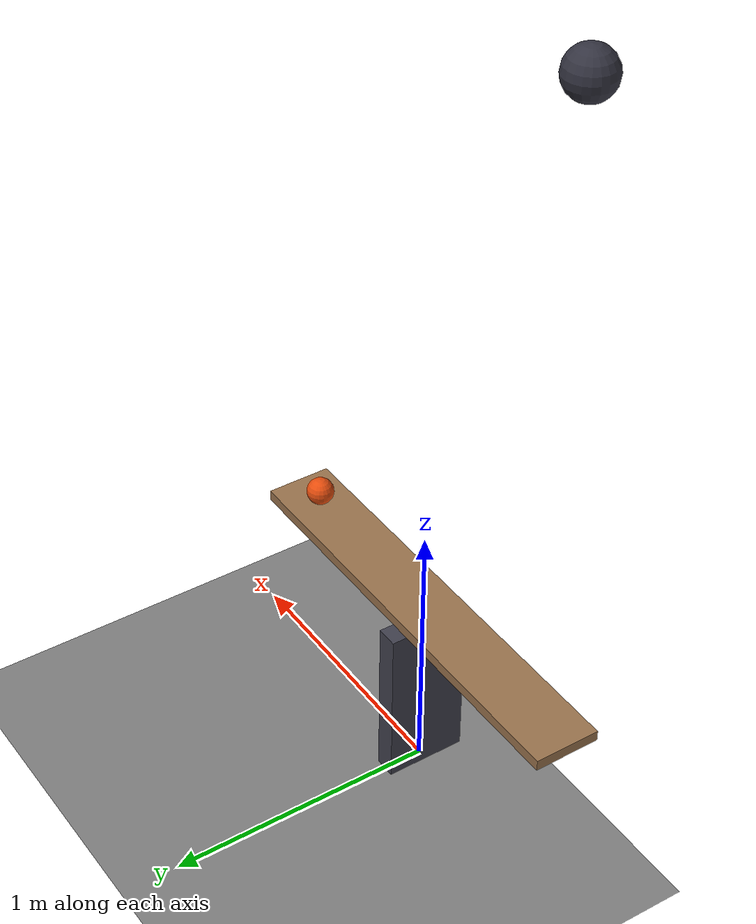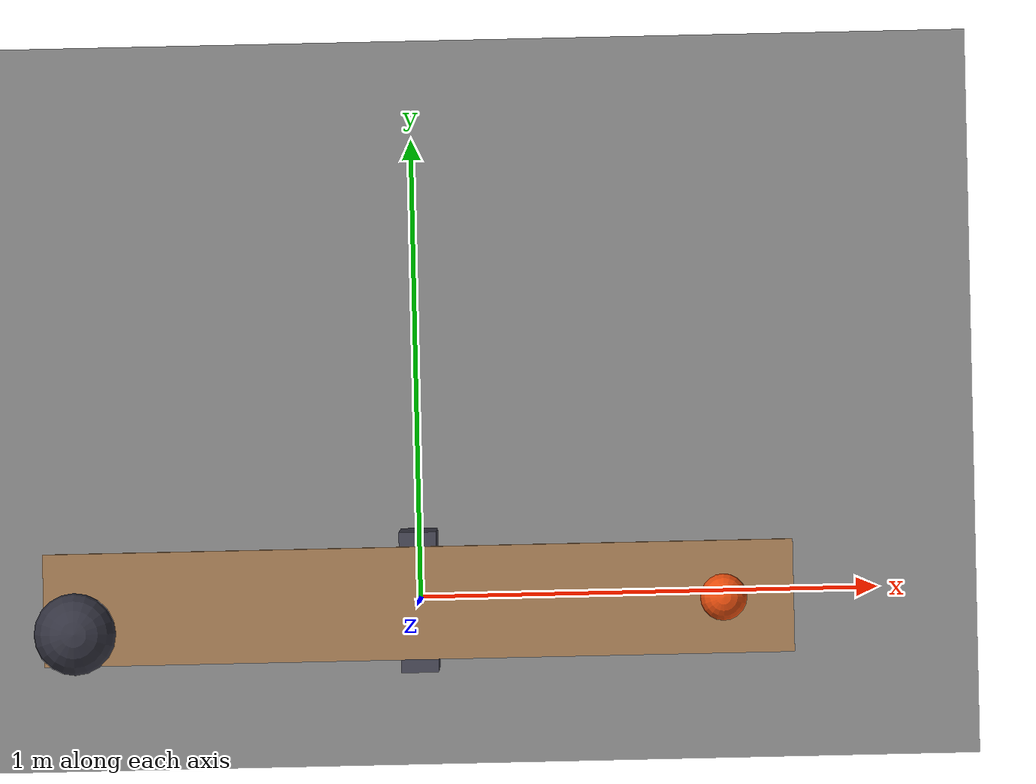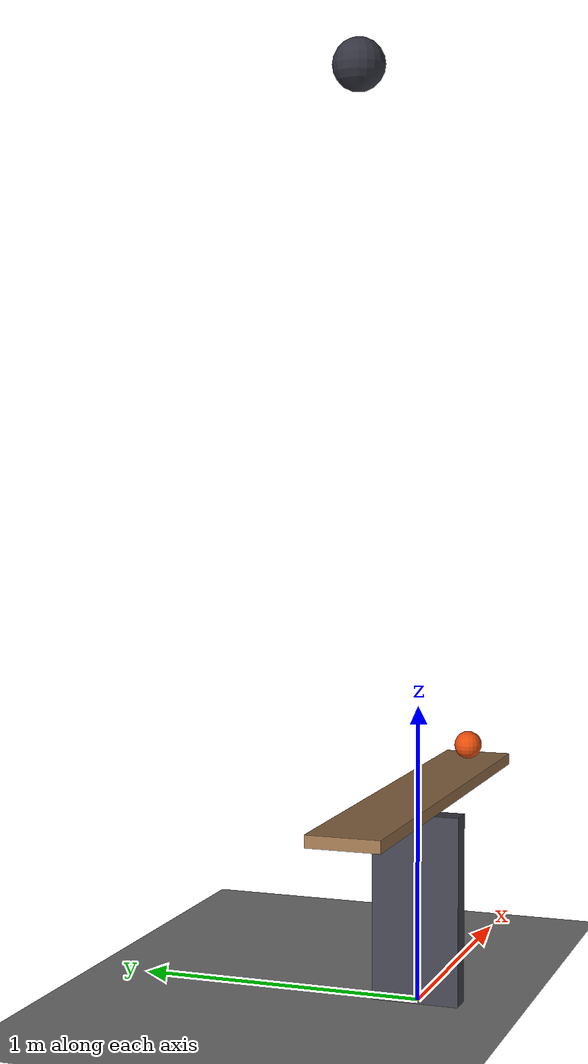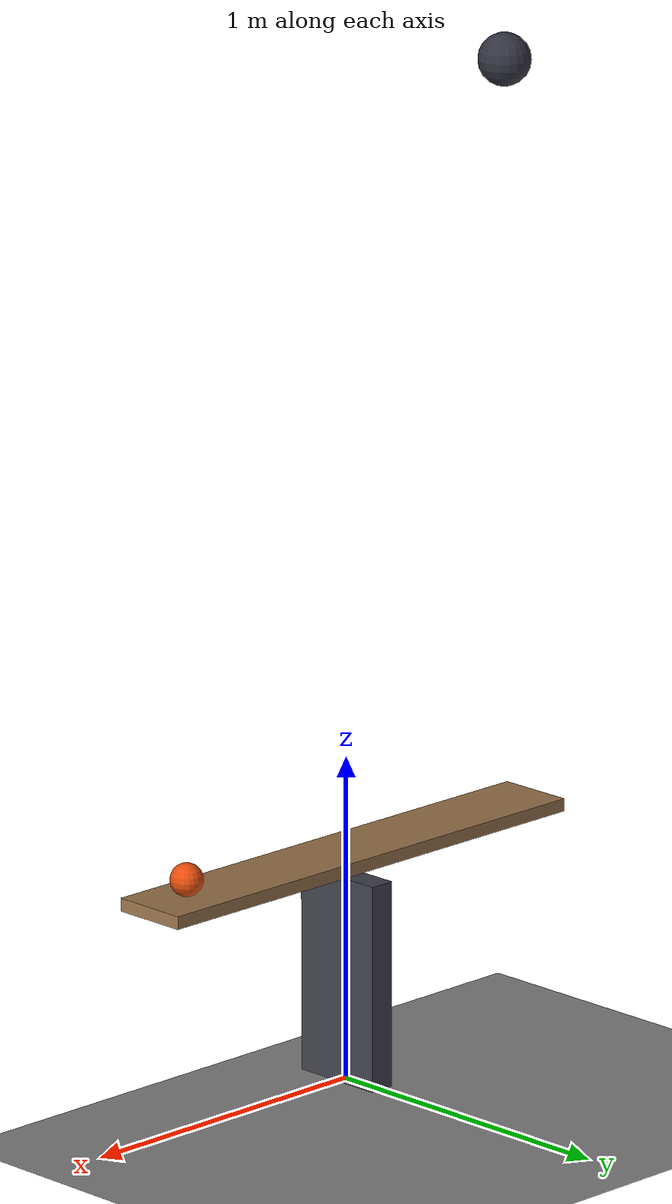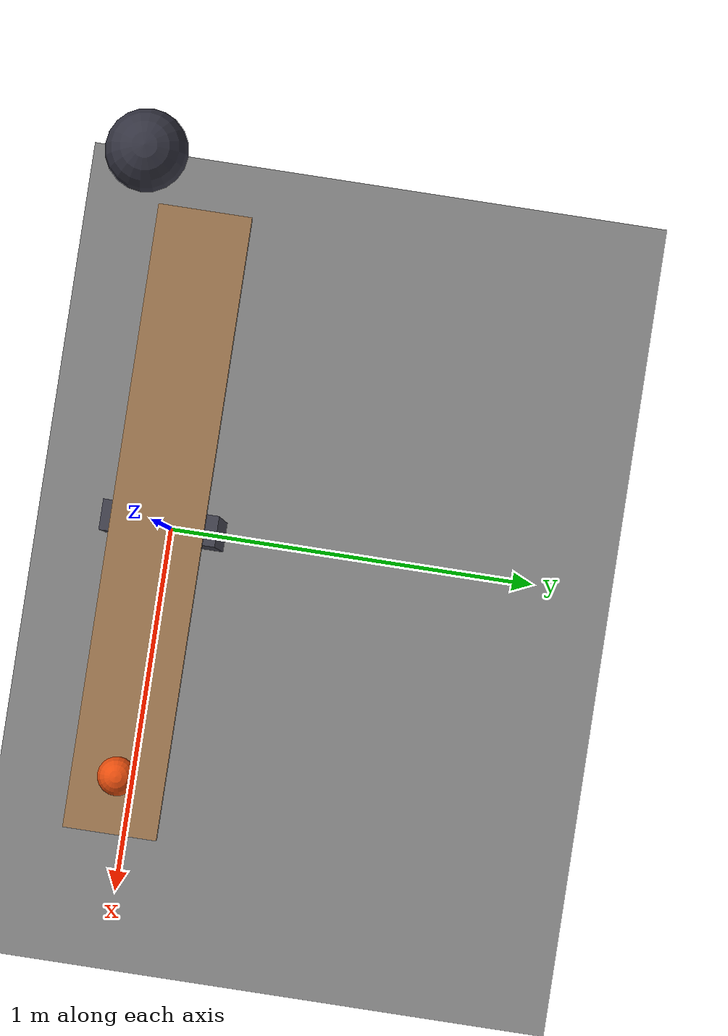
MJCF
<mujoco model="gravity_powered_seesaw">
  <compiler angle="radian"/>
  <option timestep="0.002"/>
  <worldbody>
    <geom name="floor" type="plane" size="6 6 0.1" friction="0.8 0.005 0.002"/>
    <body name="support">
      <geom name="support" type="box" pos="0 0 0.32" size="0.04 0.15 0.32" rgba="0.25 0.25 0.3 1"/>
    </body>
    <body name="seesaw" pos="0 0 0.7">
      <joint name="seesaw_hinge" type="hinge" pos="0 0 0" axis="0 1 0" limited="true" range="-0.436332 0" damping="0.002" armature="0.001"/>
      <geom name="seesaw" type="box" pos="0 0 0" size="0.8 0.12 0.02" mass="0.2" friction="0.6 0.005 0.002" solref="0.01 1" rgba="0.6 0.45 0.3 1"/>
    </body>
    <body name="ball" pos="0.65 0 0.77">
      <freejoint/>
      <geom name="ball" type="sphere" pos="0 0 0" size="0.05" mass="0.1" condim="6" friction="0.6 0.005 0.002" solref="0.01 1" rgba="0.9 0.3 0.05 1"/>
    </body>
    <body name="weight" pos="-0.65 0 3">
      <freejoint/>
      <geom name="weight" type="sphere" pos="0 0 0" size="0.08" mass="1" friction="0.6 0.005 0.002" solref="0.01 1" rgba="0.2 0.2 0.25 1"/>
    </body>
  </worldbody>
  <keyframe>
    <key name="start" qpos="0 0.65 0 0.77 1 0 0 0 -0.65 0 3 1 0 0 0" qvel="0 0 0 0 0 0 0 0 0 0 0 0 0"/>
  </keyframe>
</mujoco>
